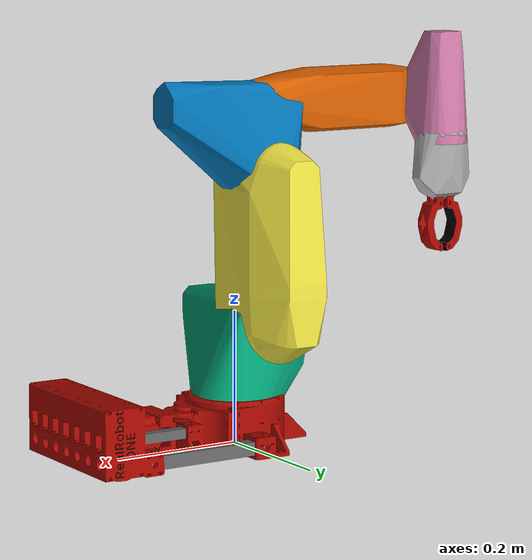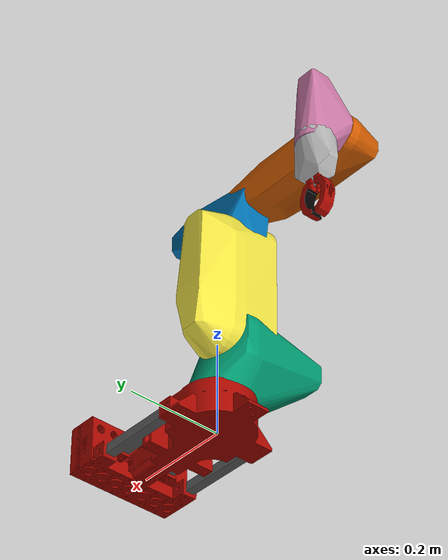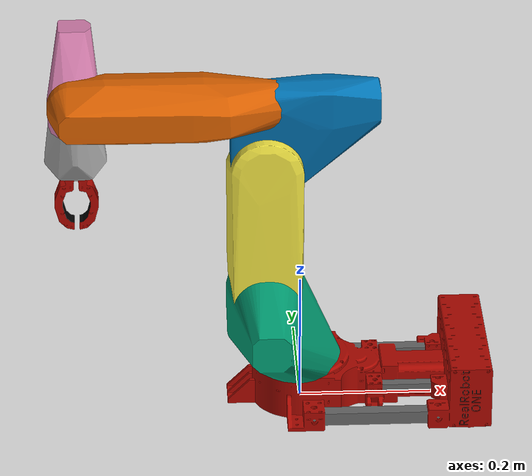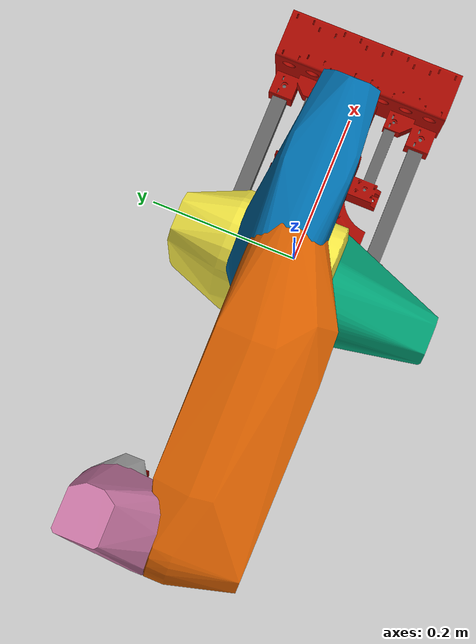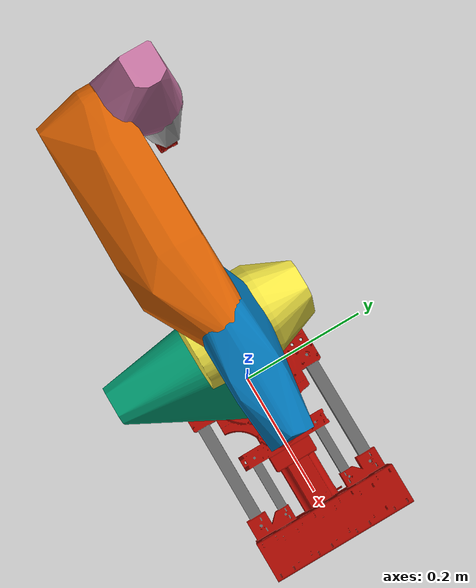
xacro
<?xml version="1.0"?>
<robot xmlns:xacro="http://www.ros.org/wiki/xacro" name="rr1">
    <!-- Arguments -->
    <xacro:arg name="ns" default="rr1" />  <!-- Namespace -->

    <!-- Includes -->
    <xacro:include filename="includes/constants.xacro" />
    <xacro:include filename="includes/inertial_macros.xacro" />
    <xacro:include filename="includes/custom_macros.xacro" />
    <xacro:include filename="includes/ros2_control.xacro" />

    <!-- Properties -->
    <xacro:property name="effort" value="30" />
    <xacro:property name="rpm" value="75" /> <!-- Including transmission-->
    <xacro:property name="damping" value="10" />
    <xacro:property name="friction" value="10.0" />

    <xacro:property name="velocity" value="${rpm * RPM_TO_RAD_S}" />
    <xacro:property name="model_scale" value="0.001 0.001 0.001" />

    <!-- We need a world link because we want the base link of the robot to be anchored to it -->
    <link name="world" />

    <!-- Base -->
    <xacro:rr1_link name="base_link" mesh_file="01_RR1_extended_base">
        <origin rpy="0 0 0" xyz="-0.052 -0.013 0.179" />
        <xacro:inertial_box mass="4.0" x="0.36" y="0.15" z="0.09">
            <origin rpy="0 0 0" xyz="0.105 0 0.0375" />
        </xacro:inertial_box>
    </xacro:rr1_link>

    <joint name="virtual_joint" type="fixed">
        <parent link="world" />
        <child link="base_link" />
        <origin xyz="0 0 0" />
    </joint>

    <!-- Shoulder -->
    <xacro:rr1_link name="shoulder_link" mesh_file="02_RR1_shoulder">
        <origin rpy="0 0 0" xyz="-0.052 -0.013 0.109" />
        <xacro:inertial_cylinder mass="2.5" r="0.05" h="0.18">
            <origin rpy="0 -${PI/8} 0" xyz="-0.04 -0.035 0.0545" />
        </xacro:inertial_cylinder>
    </xacro:rr1_link>

    <joint name="shoulder_joint" type="revolute">
        <parent link="base_link" />
        <child link="shoulder_link" />
        <origin xyz="0 0 0.07" />
        <axis xyz="0 0 1" />
        <limit lower="-${PI*3/4}" upper="${PI*3/4}" effort="${effort}" velocity="${velocity}" />
        <dynamics damping="${damping}" friction="${friction}" />
    </joint>

    <!-- Upper Arm -->
    <xacro:rr1_link name="upper_arm_link" mesh_file="03_RR1_upper_arm">
        <origin rpy="0 0 0" xyz="0 -0.013 0" />
        <xacro:inertial_cylinder mass="2.5" r="0.085" h="0.32">
            <origin rpy="0 0 0" xyz="0 0.035 0.125" />
        </xacro:inertial_cylinder>
    </xacro:rr1_link>

    <joint name="upper_arm_joint" type="revolute">
        <parent link="shoulder_link" />
        <child link="upper_arm_link" />
        <origin xyz="-0.052 0 0.109" />
        <axis xyz="0 1 0" />
        <limit lower="-${PI/8}" upper="${PI/8}" effort="${effort}" velocity="${velocity}" />
        <dynamics damping="${damping}" friction="${friction}" />
    </joint>

    <!-- Elbow -->
    <xacro:rr1_link name="elbow_link" mesh_file="04_RR1_elbow">
        <origin rpy="0 0 0" xyz="0 -0.013 -0.225" />
        <xacro:inertial_box mass="1.75" x="0.174" y="0.055" z="0.19">
            <origin rpy="0 0 0" xyz="0.032 0 0.04" />
        </xacro:inertial_box>
    </xacro:rr1_link>

    <joint name="elbow_joint" type="revolute">
        <parent link="upper_arm_link" />
        <child link="elbow_link" />
        <origin xyz="0 0 0.225" />
        <axis xyz="0 1 0" />
        <limit lower="-${PI/2}" upper="${PI/2}" effort="${effort}" velocity="${velocity}" />
        <dynamics damping="${damping}" friction="${friction}" />
    </joint>

    <!-- Forearm -->
    <xacro:rr1_link name="forearm_link" mesh_file="05_RR1_forearm">
        <origin rpy="0 0 0" xyz="0 -0.0042 -0.3257" />
        <xacro:inertial_cylinder mass="1.5" r="0.05" h="0.26">
            <origin rpy="0 -${PI/2} 0" xyz="-0.18 0 0" />
        </xacro:inertial_cylinder>
    </xacro:rr1_link>

    <joint name="forearm_joint" type="revolute">
        <parent link="elbow_link" />
        <child link="forearm_link" />
        <origin xyz="0 -0.0088 0.1007" />
        <axis xyz="1 0 0" />
        <limit lower="-${PI*3/4}" upper="${PI*3/4}" effort="${effort}" velocity="${velocity}" />
        <dynamics damping="${damping}" friction="${friction}" />
    </joint>

    <!-- Wrist -->
    <xacro:rr1_link name="wrist_link" mesh_file="06_RR1_wrist">
        <origin rpy="0 0 0" xyz="0.284 -0.0042 -0.3257" />
        <xacro:inertial_box mass="1.0" x="0.044" y="0.044" z="0.11">
            <origin rpy="0 0 0" xyz="0 0.062 0.038" />
        </xacro:inertial_box>
    </xacro:rr1_link>

    <joint name="wrist_joint" type="revolute">
        <parent link="forearm_link" />
        <child link="wrist_link" />
        <origin xyz="-0.284 0 0" />
        <axis xyz="0 1 0" />
        <limit lower="0" upper="${PI}" effort="${effort}" velocity="${velocity}" />
        <dynamics damping="${damping}" friction="${friction}" />
    </joint>

    <!-- Hand -->
    <xacro:rr1_link name="hand_link" mesh_file="07_RR1_hand_no_grip">
        <origin rpy="0 0 0" xyz="0.284 -0.07 -0.3257" />
        <xacro:inertial_cylinder mass="0.5" r="0.0375" h="0.14">
            <origin rpy="0 0 0" xyz="0 0 -0.08" />
        </xacro:inertial_cylinder>
    </xacro:rr1_link>

    <joint name="hand_joint" type="revolute">
        <parent link="wrist_link" />
        <child link="hand_link" />
        <origin xyz="0 0.0658 0" />
        <axis xyz="0 0 1" />
        <limit lower="-${PI*3/4}" upper="${PI*3/4}" effort="${effort}" velocity="${velocity}" />
        <dynamics damping="${damping}" friction="${friction}" />
    </joint>

    <!-- Gripper -->
    <xacro:rr1_link name="finger_link" mesh_file="08_RR1_grip">
        <origin rpy="0 0 0" xyz="0.274 -0.07 -0.1757" />
        <xacro:inertial_box mass="0.25" x="0.01" y="0.02" z="0.06">
            <origin rpy="0 0 0" xyz="0.01 0 -0.05" />
        </xacro:inertial_box>
    </xacro:rr1_link>

    <joint name="finger_joint" type="revolute">
        <parent link="hand_link" />
        <child link="finger_link" />
        <origin xyz="0.01 0 -0.15" />
        <axis xyz="0 -1 0" />
        <limit lower="0" upper="${PI*3/8}" effort="${effort}" velocity="${velocity}" />
        <dynamics damping="${damping}" friction="${friction}" />
    </joint>

    <xacro:rr1_link name="opposite_finger_link" mesh_file="08_RR1_grip_opposite">
        <origin rpy="0 0 0" xyz="0.294 -0.07 -0.1757" />
        <xacro:inertial_box mass="0.25" x="0.01" y="0.02" z="0.06">
            <origin rpy="0 0 0" xyz="-0.01 0 -0.05" />
        </xacro:inertial_box>
    </xacro:rr1_link>

    <joint name="opposite_finger_joint" type="revolute">
        <parent link="hand_link" />
        <child link="opposite_finger_link" />
        <origin xyz="-0.01 0 -0.15" />
        <axis xyz="0 1 0" />
        <mimic joint="finger_joint" />
        <limit lower="0" upper="${PI*3/8 }" effort="${effort}" velocity="${velocity}" />
        <dynamics damping="${damping}" friction="${friction}" />
    </joint>

    <link name="tool" />

    <joint name="tool_joint" type="fixed">
        <parent link="hand_link" />
        <child link="tool" />
        <origin xyz="0 0 -0.195" />
    </joint>

</robot>

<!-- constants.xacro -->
<robot xmlns:xacro="http://www.ros.org/wiki/xacro">

    <!-- Common mathematical constants -->
    <xacro:property name="PI" value="3.14159265359" />
    <xacro:property name="RPM_TO_RAD_S" value="0.1047198" />

</robot>

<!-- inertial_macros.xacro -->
<robot xmlns:xacro="http://www.ros.org/wiki/xacro">

    <!-- Specify some standard inertial calculations
    https://en.wikipedia.org/wiki/List_of_moments_of_inertia -->

    <!-- Dummy box inertial kernel for testing purposes -->
    <xacro:macro name="default_inertial" params="mass">
        <inertial>
            <mass value="${mass}" />
            <inertia ixx="1" ixy="0" ixz="0" iyy="1" iyz="0" izz="1" />
        </inertial>
    </xacro:macro>

    <!-- Solid sphere of a given radius and mass -->
    <xacro:macro name="inertial_sphere" params="mass radius *origin">
        <inertial>
            <xacro:insert_block name="origin" />
            <mass value="${mass}" />
            <inertia ixx="${(2/5) * mass * (radius*radius)}" ixy="0.0" ixz="0.0"
                iyy="${(2/5) * mass * (radius*radius)}" iyz="0.0"
                izz="${(2/5) * mass * (radius*radius)}" />
        </inertial>
    </xacro:macro>

    <!-- Solid cuboid (box) of dimensions x, y, z, and mass -->
    <xacro:macro name="inertial_box" params="mass x y z *origin">
        <inertial>
            <xacro:insert_block name="origin" />
            <mass value="${mass}" />
            <inertia ixx="${(1/12) * mass * (y*y+z*z)}" ixy="0.0" ixz="0.0"
                iyy="${(1/12) * mass * (x*x+z*z)}" iyz="0.0"
                izz="${(1/12) * mass * (x*x+y*y)}" />
        </inertial>
    </xacro:macro>

    <!-- Solid cylinder of radius r, height h and mass -->
    <xacro:macro name="inertial_cylinder" params="mass r h *origin">
        <inertial>
            <xacro:insert_block name="origin" />
            <mass value="${mass}" />
            <inertia ixx="${(1/12) * mass * (3*r*r + h*h)}" ixy="0.0" ixz="0.0"
                iyy="${(1/12) * mass * (3*r*r + h*h)}" iyz="0.0"
                izz="${(1/2) * mass * r*r}" />
        </inertial>
    </xacro:macro>

</robot>

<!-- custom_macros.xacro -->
<robot xmlns:xacro="http://www.ros.org/wiki/xacro">

    <xacro:macro name="rr1_link" params="name mesh_file *origin *inertial">

        <!-- Create a link with a given name. -->
        <link name="${name}">

            <!-- Create a visual component using a provided mesh file -->
            <visual>
                <xacro:insert_block name="origin" />
                <geometry>
                    <mesh filename="package://rr1_description/mesh/visual/${mesh_file}.dae"
                        scale="${model_scale}" />
                </geometry>
            </visual>

            <!-- Create a collision component using a provided mesh file -->
            <collision>
                <xacro:insert_block name="origin" />
                <geometry>
                    <mesh filename="package://rr1_description/mesh/collision/${mesh_file}.stl"
                        scale="${model_scale}" />
                </geometry>
            </collision>

            <!-- Insert provided inertial block -->
            <xacro:insert_block name="inertial" />
        </link>

    </xacro:macro>

    <xacro:macro name="ros2_control_joint" params="name min_lim max_lim">

        <joint name="${name}">
            <command_interface name="position">
                <param name="min">${min_lim}</param>
                <param name="max">${max_lim}</param>
            </command_interface>
            <state_interface name="position">
                <param name="initial_value">0.0</param>
            </state_interface>
            <state_interface name="velocity">
                <param name="initial_value">0.0</param>
            </state_interface>
            <state_interface name="effort">
                <param name="initial_value">0.0</param>
            </state_interface>
        </joint>

    </xacro:macro>

</robot>
